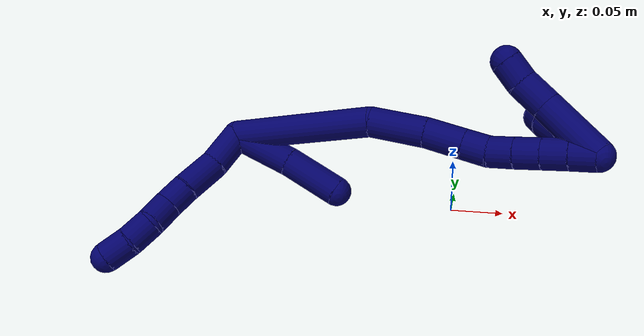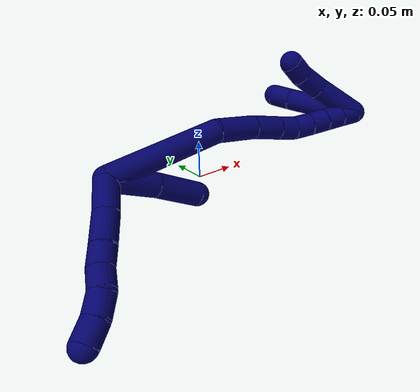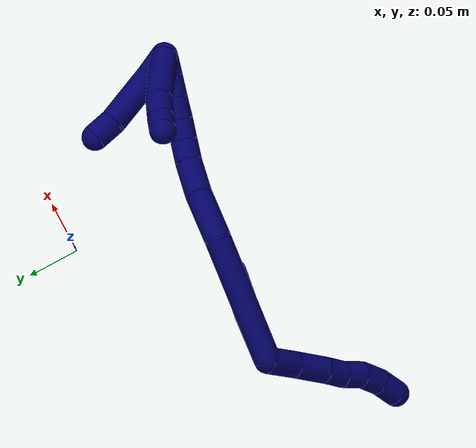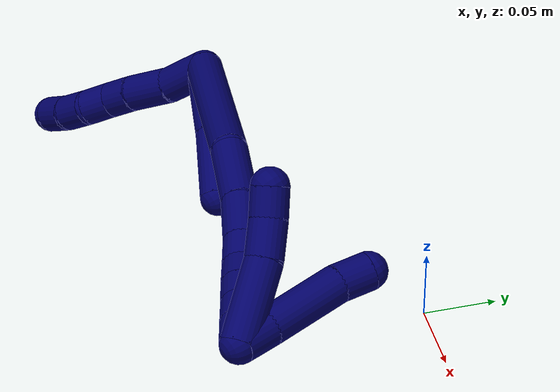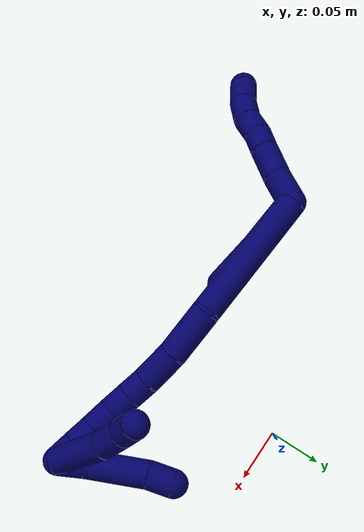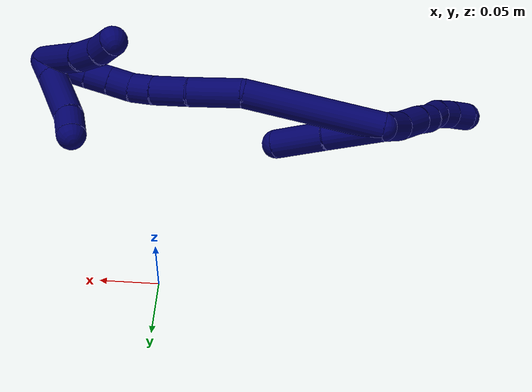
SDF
<sdf version="1.7">
 <world name="default">
  <model name="7">
   <static>0</static>
   <link name="7">
    <collision name="collision-cylinder-e_1_2_8">
     <pose>-0.008749 -0.010619 0.009324 0.850257 -0.554391 -0.256216</pose>
     <geometry><cylinder><radius>0.0125</radius><length>0.033241</length></cylinder></geometry>
     <surface>
      <friction><ode><mu>1.16</mu><mu2>1.16</mu2><slip1>0</slip1><slip2>0</slip2></ode></friction>
      <contact><ode><kp>1e+06</kp><kd>1</kd><max_vel>0</max_vel><min_depth>0.001</min_depth></ode></contact>
     </surface>
    </collision>
    <visual name="visual-cylinder-e_1_2_8">
     <pose>-0.008749 -0.010619 0.009324 0.850257 -0.554391 -0.256216</pose>
     <geometry><cylinder><radius>0.0125</radius><length>0.033241</length></cylinder></geometry>
     <material><ambient>0.003922 0 0.403922 1</ambient></material>
    </visual>
    <collision name="collision-cylinder-e_2_8_9">
     <pose>-0.02809 -0.02925 0.027751 0.721712 -0.717893 -0.281317</pose>
     <geometry><cylinder><radius>0.0125</radius><length>0.032203</length></cylinder></geometry>
     <surface>
      <friction><ode><mu>1.16</mu><mu2>1.16</mu2><slip1>0</slip1><slip2>0</slip2></ode></friction>
      <contact><ode><kp>1e+06</kp><kd>1</kd><max_vel>0</max_vel><min_depth>0.001</min_depth></ode></contact>
     </surface>
    </collision>
    <visual name="visual-cylinder-e_2_8_9">
     <pose>-0.02809 -0.02925 0.027751 0.721712 -0.717893 -0.281317</pose>
     <geometry><cylinder><radius>0.0125</radius><length>0.032203</length></cylinder></geometry>
     <material><ambient>0.003922 0 0.403922 1</ambient></material>
    </visual>
    <collision name="collision-cylinder-e_3_9_10">
     <pose>-0.045118 -0.043149 0.042159 0.837418 -0.682127 -0.313321</pose>
     <geometry><cylinder><radius>0.0125</radius><length>0.020416</length></cylinder></geometry>
     <surface>
      <friction><ode><mu>1.16</mu><mu2>1.16</mu2><slip1>0</slip1><slip2>0</slip2></ode></friction>
      <contact><ode><kp>1e+06</kp><kd>1</kd><max_vel>0</max_vel><min_depth>0.001</min_depth></ode></contact>
     </surface>
    </collision>
    <visual name="visual-cylinder-e_3_9_10">
     <pose>-0.045118 -0.043149 0.042159 0.837418 -0.682127 -0.313321</pose>
     <geometry><cylinder><radius>0.0125</radius><length>0.020416</length></cylinder></geometry>
     <material><ambient>0.003922 0 0.403922 1</ambient></material>
    </visual>
    <collision name="collision-cylinder-e_4_10_11">
     <pose>-0.057305 -0.053921 0.054323 0.618803 -0.599181 -0.196845</pose>
     <geometry><cylinder><radius>0.0125</radius><length>0.020398</length></cylinder></geometry>
     <surface>
      <friction><ode><mu>1.16</mu><mu2>1.16</mu2><slip1>0</slip1><slip2>0</slip2></ode></friction>
      <contact><ode><kp>1e+06</kp><kd>1</kd><max_vel>0</max_vel><min_depth>0.001</min_depth></ode></contact>
     </surface>
    </collision>
    <visual name="visual-cylinder-e_4_10_11">
     <pose>-0.057305 -0.053921 0.054323 0.618803 -0.599181 -0.196845</pose>
     <geometry><cylinder><radius>0.0125</radius><length>0.020398</length></cylinder></geometry>
     <material><ambient>0.003922 0 0.403922 1</ambient></material>
    </visual>
    <collision name="collision-cylinder-e_5_11_12">
     <pose>-0.070255 -0.065595 0.065642 0.989708 -0.725204 -0.403872</pose>
     <geometry><cylinder><radius>0.0125</radius><length>0.021706</length></cylinder></geometry>
     <surface>
      <friction><ode><mu>1.16</mu><mu2>1.16</mu2><slip1>0</slip1><slip2>0</slip2></ode></friction>
      <contact><ode><kp>1e+06</kp><kd>1</kd><max_vel>0</max_vel><min_depth>0.001</min_depth></ode></contact>
     </surface>
    </collision>
    <visual name="visual-cylinder-e_5_11_12">
     <pose>-0.070255 -0.065595 0.065642 0.989708 -0.725204 -0.403872</pose>
     <geometry><cylinder><radius>0.0125</radius><length>0.021706</length></cylinder></geometry>
     <material><ambient>0.003922 0 0.403922 1</ambient></material>
    </visual>
    <collision name="collision-cylinder-e_6_12_6">
     <pose>-0.085671 -0.079252 0.072693 1.20987 -0.841641 -0.600197</pose>
     <geometry><cylinder><radius>0.0125</radius><length>0.022037</length></cylinder></geometry>
     <surface>
      <friction><ode><mu>1.16</mu><mu2>1.16</mu2><slip1>0</slip1><slip2>0</slip2></ode></friction>
      <contact><ode><kp>1e+06</kp><kd>1</kd><max_vel>0</max_vel><min_depth>0.001</min_depth></ode></contact>
     </surface>
    </collision>
    <visual name="visual-cylinder-e_6_12_6">
     <pose>-0.085671 -0.079252 0.072693 1.20987 -0.841641 -0.600197</pose>
     <geometry><cylinder><radius>0.0125</radius><length>0.022037</length></cylinder></geometry>
     <material><ambient>0.003922 0 0.403922 1</ambient></material>
    </visual>
    <collision name="collision-cylinder-e_1_2_13">
     <pose>0.022539 -0.004314 0.011947 0.346499 1.0576 0.203804</pose>
     <geometry><cylinder><radius>0.0125</radius><length>0.051744</length></cylinder></geometry>
     <surface>
      <friction><ode><mu>1.16</mu><mu2>1.16</mu2><slip1>0</slip1><slip2>0</slip2></ode></friction>
      <contact><ode><kp>1e+06</kp><kd>1</kd><max_vel>0</max_vel><min_depth>0.001</min_depth></ode></contact>
     </surface>
    </collision>
    <visual name="visual-cylinder-e_1_2_13">
     <pose>0.022539 -0.004314 0.011947 0.346499 1.0576 0.203804</pose>
     <geometry><cylinder><radius>0.0125</radius><length>0.051744</length></cylinder></geometry>
     <material><ambient>0.003922 0 0.403922 1</ambient></material>
    </visual>
    <collision name="collision-cylinder-e_2_13_5">
     <pose>0.065078 -0.014095 0.036234 0.417069 0.977172 0.224032</pose>
     <geometry><cylinder><radius>0.0125</radius><length>0.048256</length></cylinder></geometry>
     <surface>
      <friction><ode><mu>1.16</mu><mu2>1.16</mu2><slip1>0</slip1><slip2>0</slip2></ode></friction>
      <contact><ode><kp>1e+06</kp><kd>1</kd><max_vel>0</max_vel><min_depth>0.001</min_depth></ode></contact>
     </surface>
    </collision>
    <visual name="visual-cylinder-e_2_13_5">
     <pose>0.065078 -0.014095 0.036234 0.417069 0.977172 0.224032</pose>
     <geometry><cylinder><radius>0.0125</radius><length>0.048256</length></cylinder></geometry>
     <material><ambient>0.003922 0 0.403922 1</ambient></material>
    </visual>
    <collision name="collision-cylinder-e_1_2_14">
     <pose>0.050531 0.022896 0.023359 -0.775377 0.996319 -0.437125</pose>
     <geometry><cylinder><radius>0.0125</radius><length>0.120388</length></cylinder></geometry>
     <surface>
      <friction><ode><mu>1.16</mu><mu2>1.16</mu2><slip1>0</slip1><slip2>0</slip2></ode></friction>
      <contact><ode><kp>1e+06</kp><kd>1</kd><max_vel>0</max_vel><min_depth>0.001</min_depth></ode></contact>
     </surface>
    </collision>
    <visual name="visual-cylinder-e_1_2_14">
     <pose>0.050531 0.022896 0.023359 -0.775377 0.996319 -0.437125</pose>
     <geometry><cylinder><radius>0.0125</radius><length>0.120388</length></cylinder></geometry>
     <material><ambient>0.003922 0 0.403922 1</ambient></material>
    </visual>
    <collision name="collision-cylinder-e_2_14_15">
     <pose>0.121754 0.048039 0.056803 -0.219223 1.10772 -0.135909</pose>
     <geometry><cylinder><radius>0.0125</radius><length>0.046254</length></cylinder></geometry>
     <surface>
      <friction><ode><mu>1.16</mu><mu2>1.16</mu2><slip1>0</slip1><slip2>0</slip2></ode></friction>
      <contact><ode><kp>1e+06</kp><kd>1</kd><max_vel>0</max_vel><min_depth>0.001</min_depth></ode></contact>
     </surface>
    </collision>
    <visual name="visual-cylinder-e_2_14_15">
     <pose>0.121754 0.048039 0.056803 -0.219223 1.10772 -0.135909</pose>
     <geometry><cylinder><radius>0.0125</radius><length>0.046254</length></cylinder></geometry>
     <material><ambient>0.003922 0 0.403922 1</ambient></material>
    </visual>
    <collision name="collision-cylinder-e_3_15_16">
     <pose>0.156006 0.050733 0.075423 -0.052407 1.00836 -0.02892</pose>
     <geometry><cylinder><radius>0.0125</radius><length>0.032059</length></cylinder></geometry>
     <surface>
      <friction><ode><mu>1.16</mu><mu2>1.16</mu2><slip1>0</slip1><slip2>0</slip2></ode></friction>
      <contact><ode><kp>1e+06</kp><kd>1</kd><max_vel>0</max_vel><min_depth>0.001</min_depth></ode></contact>
     </surface>
    </collision>
    <visual name="visual-cylinder-e_3_15_16">
     <pose>0.156006 0.050733 0.075423 -0.052407 1.00836 -0.02892</pose>
     <geometry><cylinder><radius>0.0125</radius><length>0.032059</length></cylinder></geometry>
     <material><ambient>0.003922 0 0.403922 1</ambient></material>
    </visual>
    <collision name="collision-cylinder-e_4_16_17">
     <pose>0.17774 0.051788 0.090019 -0.099773 0.930392 -0.050111</pose>
     <geometry><cylinder><radius>0.0125</radius><length>0.020387</length></cylinder></geometry>
     <surface>
      <friction><ode><mu>1.16</mu><mu2>1.16</mu2><slip1>0</slip1><slip2>0</slip2></ode></friction>
      <contact><ode><kp>1e+06</kp><kd>1</kd><max_vel>0</max_vel><min_depth>0.001</min_depth></ode></contact>
     </surface>
    </collision>
    <visual name="visual-cylinder-e_4_16_17">
     <pose>0.17774 0.051788 0.090019 -0.099773 0.930392 -0.050111</pose>
     <geometry><cylinder><radius>0.0125</radius><length>0.020387</length></cylinder></geometry>
     <material><ambient>0.003922 0 0.403922 1</ambient></material>
    </visual>
    <collision name="collision-cylinder-e_5_17_18">
     <pose>0.193709 0.055464 0.101767 -0.494999 0.878538 -0.236356</pose>
     <geometry><cylinder><radius>0.0125</radius><length>0.020252</length></cylinder></geometry>
     <surface>
      <friction><ode><mu>1.16</mu><mu2>1.16</mu2><slip1>0</slip1><slip2>0</slip2></ode></friction>
      <contact><ode><kp>1e+06</kp><kd>1</kd><max_vel>0</max_vel><min_depth>0.001</min_depth></ode></contact>
     </surface>
    </collision>
    <visual name="visual-cylinder-e_5_17_18">
     <pose>0.193709 0.055464 0.101767 -0.494999 0.878538 -0.236356</pose>
     <geometry><cylinder><radius>0.0125</radius><length>0.020252</length></cylinder></geometry>
     <material><ambient>0.003922 0 0.403922 1</ambient></material>
    </visual>
    <collision name="collision-cylinder-e_6_18_19">
     <pose>0.209474 0.06179 0.112899 -0.538894 0.898539 -0.264749</pose>
     <geometry><cylinder><radius>0.0125</radius><length>0.020373</length></cylinder></geometry>
     <surface>
      <friction><ode><mu>1.16</mu><mu2>1.16</mu2><slip1>0</slip1><slip2>0</slip2></ode></friction>
      <contact><ode><kp>1e+06</kp><kd>1</kd><max_vel>0</max_vel><min_depth>0.001</min_depth></ode></contact>
     </surface>
    </collision>
    <visual name="visual-cylinder-e_6_18_19">
     <pose>0.209474 0.06179 0.112899 -0.538894 0.898539 -0.264749</pose>
     <geometry><cylinder><radius>0.0125</radius><length>0.020373</length></cylinder></geometry>
     <material><ambient>0.003922 0 0.403922 1</ambient></material>
    </visual>
    <collision name="collision-cylinder-e_7_19_20">
     <pose>0.225246 0.068329 0.123889 -0.534655 0.880423 -0.256602</pose>
     <geometry><cylinder><radius>0.0125</radius><length>0.020238</length></cylinder></geometry>
     <surface>
      <friction><ode><mu>1.16</mu><mu2>1.16</mu2><slip1>0</slip1><slip2>0</slip2></ode></friction>
      <contact><ode><kp>1e+06</kp><kd>1</kd><max_vel>0</max_vel><min_depth>0.001</min_depth></ode></contact>
     </surface>
    </collision>
    <visual name="visual-cylinder-e_7_19_20">
     <pose>0.225246 0.068329 0.123889 -0.534655 0.880423 -0.256602</pose>
     <geometry><cylinder><radius>0.0125</radius><length>0.020238</length></cylinder></geometry>
     <material><ambient>0.003922 0 0.403922 1</ambient></material>
    </visual>
    <collision name="collision-cylinder-e_8_20_1">
     <pose>0.240879 0.074671 0.134893 -0.510619 0.896645 -0.249774</pose>
     <geometry><cylinder><radius>0.0125</radius><length>0.020048</length></cylinder></geometry>
     <surface>
      <friction><ode><mu>1.16</mu><mu2>1.16</mu2><slip1>0</slip1><slip2>0</slip2></ode></friction>
      <contact><ode><kp>1e+06</kp><kd>1</kd><max_vel>0</max_vel><min_depth>0.001</min_depth></ode></contact>
     </surface>
    </collision>
    <visual name="visual-cylinder-e_8_20_1">
     <pose>0.240879 0.074671 0.134893 -0.510619 0.896645 -0.249774</pose>
     <geometry><cylinder><radius>0.0125</radius><length>0.020048</length></cylinder></geometry>
     <material><ambient>0.003922 0 0.403922 1</ambient></material>
    </visual>
    <collision name="collision-cylinder-e_1_1_21">
     <pose>0.233721 0.08722 0.120189 -2.70162 -0.592122 1.87644</pose>
     <geometry><cylinder><radius>0.0125</radius><length>0.053714</length></cylinder></geometry>
     <surface>
      <friction><ode><mu>1.16</mu><mu2>1.16</mu2><slip1>0</slip1><slip2>0</slip2></ode></friction>
      <contact><ode><kp>1e+06</kp><kd>1</kd><max_vel>0</max_vel><min_depth>0.001</min_depth></ode></contact>
     </surface>
    </collision>
    <visual name="visual-cylinder-e_1_1_21">
     <pose>0.233721 0.08722 0.120189 -2.70162 -0.592122 1.87644</pose>
     <geometry><cylinder><radius>0.0125</radius><length>0.053714</length></cylinder></geometry>
     <material><ambient>0.003922 0 0.403922 1</ambient></material>
    </visual>
    <collision name="collision-cylinder-e_2_21_22">
     <pose>0.210101 0.101984 0.091891 -2.56666 -0.727413 1.8208</pose>
     <geometry><cylinder><radius>0.0125</radius><length>0.02596</length></cylinder></geometry>
     <surface>
      <friction><ode><mu>1.16</mu><mu2>1.16</mu2><slip1>0</slip1><slip2>0</slip2></ode></friction>
      <contact><ode><kp>1e+06</kp><kd>1</kd><max_vel>0</max_vel><min_depth>0.001</min_depth></ode></contact>
     </surface>
    </collision>
    <visual name="visual-cylinder-e_2_21_22">
     <pose>0.210101 0.101984 0.091891 -2.56666 -0.727413 1.8208</pose>
     <geometry><cylinder><radius>0.0125</radius><length>0.02596</length></cylinder></geometry>
     <material><ambient>0.003922 0 0.403922 1</ambient></material>
    </visual>
    <collision name="collision-cylinder-e_3_22_4">
     <pose>0.195198 0.113176 0.078379 -2.30802 -0.665032 1.3249</pose>
     <geometry><cylinder><radius>0.0125</radius><length>0.020326</length></cylinder></geometry>
     <surface>
      <friction><ode><mu>1.16</mu><mu2>1.16</mu2><slip1>0</slip1><slip2>0</slip2></ode></friction>
      <contact><ode><kp>1e+06</kp><kd>1</kd><max_vel>0</max_vel><min_depth>0.001</min_depth></ode></contact>
     </surface>
    </collision>
    <visual name="visual-cylinder-e_3_22_4">
     <pose>0.195198 0.113176 0.078379 -2.30802 -0.665032 1.3249</pose>
     <geometry><cylinder><radius>0.0125</radius><length>0.020326</length></cylinder></geometry>
     <material><ambient>0.003922 0 0.403922 1</ambient></material>
    </visual>
    <collision name="collision-cylinder-e_1_1_23">
     <pose>0.247662 0.075727 0.128876 2.96887 -0.089791 -0.957321</pose>
     <geometry><cylinder><radius>0.0125</radius><length>0.023394</length></cylinder></geometry>
     <surface>
      <friction><ode><mu>1.16</mu><mu2>1.16</mu2><slip1>0</slip1><slip2>0</slip2></ode></friction>
      <contact><ode><kp>1e+06</kp><kd>1</kd><max_vel>0</max_vel><min_depth>0.001</min_depth></ode></contact>
     </surface>
    </collision>
    <visual name="visual-cylinder-e_1_1_23">
     <pose>0.247662 0.075727 0.128876 2.96887 -0.089791 -0.957321</pose>
     <geometry><cylinder><radius>0.0125</radius><length>0.023394</length></cylinder></geometry>
     <material><ambient>0.003922 0 0.403922 1</ambient></material>
    </visual>
    <collision name="collision-cylinder-e_2_23_24">
     <pose>0.244902 0.071621 0.090369 3.06394 -0.063028 -1.36341</pose>
     <geometry><cylinder><radius>0.0125</radius><length>0.054332</length></cylinder></geometry>
     <surface>
      <friction><ode><mu>1.16</mu><mu2>1.16</mu2><slip1>0</slip1><slip2>0</slip2></ode></friction>
      <contact><ode><kp>1e+06</kp><kd>1</kd><max_vel>0</max_vel><min_depth>0.001</min_depth></ode></contact>
     </surface>
    </collision>
    <visual name="visual-cylinder-e_2_23_24">
     <pose>0.244902 0.071621 0.090369 3.06394 -0.063028 -1.36341</pose>
     <geometry><cylinder><radius>0.0125</radius><length>0.054332</length></cylinder></geometry>
     <material><ambient>0.003922 0 0.403922 1</ambient></material>
    </visual>
    <collision name="collision-cylinder-e_3_24_3">
     <pose>0.244521 0.068537 0.052325 3.05274 0.119781 1.8657</pose>
     <geometry><cylinder><radius>0.0125</radius><length>0.022274</length></cylinder></geometry>
     <surface>
      <friction><ode><mu>1.16</mu><mu2>1.16</mu2><slip1>0</slip1><slip2>0</slip2></ode></friction>
      <contact><ode><kp>1e+06</kp><kd>1</kd><max_vel>0</max_vel><min_depth>0.001</min_depth></ode></contact>
     </surface>
    </collision>
    <visual name="visual-cylinder-e_3_24_3">
     <pose>0.244521 0.068537 0.052325 3.05274 0.119781 1.8657</pose>
     <geometry><cylinder><radius>0.0125</radius><length>0.022274</length></cylinder></geometry>
     <material><ambient>0.003922 0 0.403922 1</ambient></material>
    </visual>
    <collision name="collision-sphere-3">
     <pose>0.245852 0.067556 0.041311 0 -0 0</pose>
     <geometry><sphere><radius>0.0125</radius></sphere></geometry>
     <surface>
      <friction><ode><mu>1.16</mu><mu2>1.16</mu2><slip1>0</slip1><slip2>0</slip2></ode></friction>
      <contact><ode><kp>1e+06</kp><kd>1</kd><max_vel>0</max_vel><min_depth>0.001</min_depth></ode></contact>
     </surface>
    </collision>
    <visual name="visual-sphere-3">
     <pose>0.245852 0.067556 0.041311 0 -0 0</pose>
     <geometry><sphere><radius>0.0125</radius></sphere></geometry>
     <material><ambient>0.003922 0 0.403922 1</ambient></material>
    </visual>
    <collision name="collision-sphere-24">
     <pose>0.243191 0.069518 0.063338 0 -0 0</pose>
     <geometry><sphere><radius>0.0125</radius></sphere></geometry>
     <surface>
      <friction><ode><mu>1.16</mu><mu2>1.16</mu2><slip1>0</slip1><slip2>0</slip2></ode></friction>
      <contact><ode><kp>1e+06</kp><kd>1</kd><max_vel>0</max_vel><min_depth>0.001</min_depth></ode></contact>
     </surface>
    </collision>
    <visual name="visual-sphere-24">
     <pose>0.243191 0.069518 0.063338 0 -0 0</pose>
     <geometry><sphere><radius>0.0125</radius></sphere></geometry>
     <material><ambient>0.003922 0 0.403922 1</ambient></material>
    </visual>
    <collision name="collision-sphere-23">
     <pose>0.246613 0.073725 0.117399 0 -0 0</pose>
     <geometry><sphere><radius>0.0125</radius></sphere></geometry>
     <surface>
      <friction><ode><mu>1.16</mu><mu2>1.16</mu2><slip1>0</slip1><slip2>0</slip2></ode></friction>
      <contact><ode><kp>1e+06</kp><kd>1</kd><max_vel>0</max_vel><min_depth>0.001</min_depth></ode></contact>
     </surface>
    </collision>
    <visual name="visual-sphere-23">
     <pose>0.246613 0.073725 0.117399 0 -0 0</pose>
     <geometry><sphere><radius>0.0125</radius></sphere></geometry>
     <material><ambient>0.003922 0 0.403922 1</ambient></material>
    </visual>
    <collision name="collision-sphere-4">
     <pose>0.188927 0.119097 0.073003 0 -0 0</pose>
     <geometry><sphere><radius>0.0125</radius></sphere></geometry>
     <surface>
      <friction><ode><mu>1.16</mu><mu2>1.16</mu2><slip1>0</slip1><slip2>0</slip2></ode></friction>
      <contact><ode><kp>1e+06</kp><kd>1</kd><max_vel>0</max_vel><min_depth>0.001</min_depth></ode></contact>
     </surface>
    </collision>
    <visual name="visual-sphere-4">
     <pose>0.188927 0.119097 0.073003 0 -0 0</pose>
     <geometry><sphere><radius>0.0125</radius></sphere></geometry>
     <material><ambient>0.003922 0 0.403922 1</ambient></material>
    </visual>
    <collision name="collision-sphere-22">
     <pose>0.20147 0.107255 0.083755 0 -0 0</pose>
     <geometry><sphere><radius>0.0125</radius></sphere></geometry>
     <surface>
      <friction><ode><mu>1.16</mu><mu2>1.16</mu2><slip1>0</slip1><slip2>0</slip2></ode></friction>
      <contact><ode><kp>1e+06</kp><kd>1</kd><max_vel>0</max_vel><min_depth>0.001</min_depth></ode></contact>
     </surface>
    </collision>
    <visual name="visual-sphere-22">
     <pose>0.20147 0.107255 0.083755 0 -0 0</pose>
     <geometry><sphere><radius>0.0125</radius></sphere></geometry>
     <material><ambient>0.003922 0 0.403922 1</ambient></material>
    </visual>
    <collision name="collision-sphere-21">
     <pose>0.218731 0.096712 0.100027 0 -0 0</pose>
     <geometry><sphere><radius>0.0125</radius></sphere></geometry>
     <surface>
      <friction><ode><mu>1.16</mu><mu2>1.16</mu2><slip1>0</slip1><slip2>0</slip2></ode></friction>
      <contact><ode><kp>1e+06</kp><kd>1</kd><max_vel>0</max_vel><min_depth>0.001</min_depth></ode></contact>
     </surface>
    </collision>
    <visual name="visual-sphere-21">
     <pose>0.218731 0.096712 0.100027 0 -0 0</pose>
     <geometry><sphere><radius>0.0125</radius></sphere></geometry>
     <material><ambient>0.003922 0 0.403922 1</ambient></material>
    </visual>
    <collision name="collision-sphere-1">
     <pose>0.24871 0.077729 0.140352 0 -0 0</pose>
     <geometry><sphere><radius>0.0125</radius></sphere></geometry>
     <surface>
      <friction><ode><mu>1.16</mu><mu2>1.16</mu2><slip1>0</slip1><slip2>0</slip2></ode></friction>
      <contact><ode><kp>1e+06</kp><kd>1</kd><max_vel>0</max_vel><min_depth>0.001</min_depth></ode></contact>
     </surface>
    </collision>
    <visual name="visual-sphere-1">
     <pose>0.24871 0.077729 0.140352 0 -0 0</pose>
     <geometry><sphere><radius>0.0125</radius></sphere></geometry>
     <material><ambient>0.003922 0 0.403922 1</ambient></material>
    </visual>
    <collision name="collision-sphere-12">
     <pose>-0.077454 -0.072384 0.070101 0 -0 0</pose>
     <geometry><sphere><radius>0.0125</radius></sphere></geometry>
     <surface>
      <friction><ode><mu>1.16</mu><mu2>1.16</mu2><slip1>0</slip1><slip2>0</slip2></ode></friction>
      <contact><ode><kp>1e+06</kp><kd>1</kd><max_vel>0</max_vel><min_depth>0.001</min_depth></ode></contact>
     </surface>
    </collision>
    <visual name="visual-sphere-12">
     <pose>-0.077454 -0.072384 0.070101 0 -0 0</pose>
     <geometry><sphere><radius>0.0125</radius></sphere></geometry>
     <material><ambient>0.003922 0 0.403922 1</ambient></material>
    </visual>
    <collision name="collision-sphere-11">
     <pose>-0.063057 -0.058806 0.061184 0 -0 0</pose>
     <geometry><sphere><radius>0.0125</radius></sphere></geometry>
     <surface>
      <friction><ode><mu>1.16</mu><mu2>1.16</mu2><slip1>0</slip1><slip2>0</slip2></ode></friction>
      <contact><ode><kp>1e+06</kp><kd>1</kd><max_vel>0</max_vel><min_depth>0.001</min_depth></ode></contact>
     </surface>
    </collision>
    <visual name="visual-sphere-11">
     <pose>-0.063057 -0.058806 0.061184 0 -0 0</pose>
     <geometry><sphere><radius>0.0125</radius></sphere></geometry>
     <material><ambient>0.003922 0 0.403922 1</ambient></material>
    </visual>
    <collision name="collision-sphere-10">
     <pose>-0.051553 -0.049036 0.047463 0 -0 0</pose>
     <geometry><sphere><radius>0.0125</radius></sphere></geometry>
     <surface>
      <friction><ode><mu>1.16</mu><mu2>1.16</mu2><slip1>0</slip1><slip2>0</slip2></ode></friction>
      <contact><ode><kp>1e+06</kp><kd>1</kd><max_vel>0</max_vel><min_depth>0.001</min_depth></ode></contact>
     </surface>
    </collision>
    <visual name="visual-sphere-10">
     <pose>-0.051553 -0.049036 0.047463 0 -0 0</pose>
     <geometry><sphere><radius>0.0125</radius></sphere></geometry>
     <material><ambient>0.003922 0 0.403922 1</ambient></material>
    </visual>
    <collision name="collision-sphere-9">
     <pose>-0.038682 -0.037262 0.036855 0 -0 0</pose>
     <geometry><sphere><radius>0.0125</radius></sphere></geometry>
     <surface>
      <friction><ode><mu>1.16</mu><mu2>1.16</mu2><slip1>0</slip1><slip2>0</slip2></ode></friction>
      <contact><ode><kp>1e+06</kp><kd>1</kd><max_vel>0</max_vel><min_depth>0.001</min_depth></ode></contact>
     </surface>
    </collision>
    <visual name="visual-sphere-9">
     <pose>-0.038682 -0.037262 0.036855 0 -0 0</pose>
     <geometry><sphere><radius>0.0125</radius></sphere></geometry>
     <material><ambient>0.003922 0 0.403922 1</ambient></material>
    </visual>
    <collision name="collision-sphere-2">
     <geometry><sphere><radius>0.0125</radius></sphere></geometry>
     <surface>
      <friction><ode><mu>1.16</mu><mu2>1.16</mu2><slip1>0</slip1><slip2>0</slip2></ode></friction>
      <contact><ode><kp>1e+06</kp><kd>1</kd><max_vel>0</max_vel><min_depth>0.001</min_depth></ode></contact>
     </surface>
    </collision>
    <visual name="visual-sphere-2">
     <geometry><sphere><radius>0.0125</radius></sphere></geometry>
     <material><ambient>0.003922 0 0.403922 1</ambient></material>
    </visual>
    <collision name="collision-sphere-19">
     <pose>0.217445 0.065046 0.118344 0 -0 0</pose>
     <geometry><sphere><radius>0.0125</radius></sphere></geometry>
     <surface>
      <friction><ode><mu>1.16</mu><mu2>1.16</mu2><slip1>0</slip1><slip2>0</slip2></ode></friction>
      <contact><ode><kp>1e+06</kp><kd>1</kd><max_vel>0</max_vel><min_depth>0.001</min_depth></ode></contact>
     </surface>
    </collision>
    <visual name="visual-sphere-19">
     <pose>0.217445 0.065046 0.118344 0 -0 0</pose>
     <geometry><sphere><radius>0.0125</radius></sphere></geometry>
     <material><ambient>0.003922 0 0.403922 1</ambient></material>
    </visual>
    <collision name="collision-sphere-8">
     <pose>-0.017499 -0.021238 0.018647 0 -0 0</pose>
     <geometry><sphere><radius>0.0125</radius></sphere></geometry>
     <surface>
      <friction><ode><mu>1.16</mu><mu2>1.16</mu2><slip1>0</slip1><slip2>0</slip2></ode></friction>
      <contact><ode><kp>1e+06</kp><kd>1</kd><max_vel>0</max_vel><min_depth>0.001</min_depth></ode></contact>
     </surface>
    </collision>
    <visual name="visual-sphere-8">
     <pose>-0.017499 -0.021238 0.018647 0 -0 0</pose>
     <geometry><sphere><radius>0.0125</radius></sphere></geometry>
     <material><ambient>0.003922 0 0.403922 1</ambient></material>
    </visual>
    <collision name="collision-sphere-6">
     <pose>-0.093888 -0.08612 0.075285 0 -0 0</pose>
     <geometry><sphere><radius>0.0125</radius></sphere></geometry>
     <surface>
      <friction><ode><mu>1.16</mu><mu2>1.16</mu2><slip1>0</slip1><slip2>0</slip2></ode></friction>
      <contact><ode><kp>1e+06</kp><kd>1</kd><max_vel>0</max_vel><min_depth>0.001</min_depth></ode></contact>
     </surface>
    </collision>
    <visual name="visual-sphere-6">
     <pose>-0.093888 -0.08612 0.075285 0 -0 0</pose>
     <geometry><sphere><radius>0.0125</radius></sphere></geometry>
     <material><ambient>0.003922 0 0.403922 1</ambient></material>
    </visual>
    <collision name="collision-sphere-13">
     <pose>0.045078 -0.008627 0.023894 0 -0 0</pose>
     <geometry><sphere><radius>0.0125</radius></sphere></geometry>
     <surface>
      <friction><ode><mu>1.16</mu><mu2>1.16</mu2><slip1>0</slip1><slip2>0</slip2></ode></friction>
      <contact><ode><kp>1e+06</kp><kd>1</kd><max_vel>0</max_vel><min_depth>0.001</min_depth></ode></contact>
     </surface>
    </collision>
    <visual name="visual-sphere-13">
     <pose>0.045078 -0.008627 0.023894 0 -0 0</pose>
     <geometry><sphere><radius>0.0125</radius></sphere></geometry>
     <material><ambient>0.003922 0 0.403922 1</ambient></material>
    </visual>
    <collision name="collision-sphere-5">
     <pose>0.085079 -0.019562 0.048574 0 -0 0</pose>
     <geometry><sphere><radius>0.0125</radius></sphere></geometry>
     <surface>
      <friction><ode><mu>1.16</mu><mu2>1.16</mu2><slip1>0</slip1><slip2>0</slip2></ode></friction>
      <contact><ode><kp>1e+06</kp><kd>1</kd><max_vel>0</max_vel><min_depth>0.001</min_depth></ode></contact>
     </surface>
    </collision>
    <visual name="visual-sphere-5">
     <pose>0.085079 -0.019562 0.048574 0 -0 0</pose>
     <geometry><sphere><radius>0.0125</radius></sphere></geometry>
     <material><ambient>0.003922 0 0.403922 1</ambient></material>
    </visual>
    <collision name="collision-sphere-14">
     <pose>0.101063 0.045792 0.046719 0 -0 0</pose>
     <geometry><sphere><radius>0.0125</radius></sphere></geometry>
     <surface>
      <friction><ode><mu>1.16</mu><mu2>1.16</mu2><slip1>0</slip1><slip2>0</slip2></ode></friction>
      <contact><ode><kp>1e+06</kp><kd>1</kd><max_vel>0</max_vel><min_depth>0.001</min_depth></ode></contact>
     </surface>
    </collision>
    <visual name="visual-sphere-14">
     <pose>0.101063 0.045792 0.046719 0 -0 0</pose>
     <geometry><sphere><radius>0.0125</radius></sphere></geometry>
     <material><ambient>0.003922 0 0.403922 1</ambient></material>
    </visual>
    <collision name="collision-sphere-15">
     <pose>0.142446 0.050285 0.066887 0 -0 0</pose>
     <geometry><sphere><radius>0.0125</radius></sphere></geometry>
     <surface>
      <friction><ode><mu>1.16</mu><mu2>1.16</mu2><slip1>0</slip1><slip2>0</slip2></ode></friction>
      <contact><ode><kp>1e+06</kp><kd>1</kd><max_vel>0</max_vel><min_depth>0.001</min_depth></ode></contact>
     </surface>
    </collision>
    <visual name="visual-sphere-15">
     <pose>0.142446 0.050285 0.066887 0 -0 0</pose>
     <geometry><sphere><radius>0.0125</radius></sphere></geometry>
     <material><ambient>0.003922 0 0.403922 1</ambient></material>
    </visual>
    <collision name="collision-sphere-16">
     <pose>0.169566 0.051181 0.083959 0 -0 0</pose>
     <geometry><sphere><radius>0.0125</radius></sphere></geometry>
     <surface>
      <friction><ode><mu>1.16</mu><mu2>1.16</mu2><slip1>0</slip1><slip2>0</slip2></ode></friction>
      <contact><ode><kp>1e+06</kp><kd>1</kd><max_vel>0</max_vel><min_depth>0.001</min_depth></ode></contact>
     </surface>
    </collision>
    <visual name="visual-sphere-16">
     <pose>0.169566 0.051181 0.083959 0 -0 0</pose>
     <geometry><sphere><radius>0.0125</radius></sphere></geometry>
     <material><ambient>0.003922 0 0.403922 1</ambient></material>
    </visual>
    <collision name="collision-sphere-17">
     <pose>0.185914 0.052394 0.09608 0 -0 0</pose>
     <geometry><sphere><radius>0.0125</radius></sphere></geometry>
     <surface>
      <friction><ode><mu>1.16</mu><mu2>1.16</mu2><slip1>0</slip1><slip2>0</slip2></ode></friction>
      <contact><ode><kp>1e+06</kp><kd>1</kd><max_vel>0</max_vel><min_depth>0.001</min_depth></ode></contact>
     </surface>
    </collision>
    <visual name="visual-sphere-17">
     <pose>0.185914 0.052394 0.09608 0 -0 0</pose>
     <geometry><sphere><radius>0.0125</radius></sphere></geometry>
     <material><ambient>0.003922 0 0.403922 1</ambient></material>
    </visual>
    <collision name="collision-sphere-18">
     <pose>0.201504 0.058535 0.107455 0 -0 0</pose>
     <geometry><sphere><radius>0.0125</radius></sphere></geometry>
     <surface>
      <friction><ode><mu>1.16</mu><mu2>1.16</mu2><slip1>0</slip1><slip2>0</slip2></ode></friction>
      <contact><ode><kp>1e+06</kp><kd>1</kd><max_vel>0</max_vel><min_depth>0.001</min_depth></ode></contact>
     </surface>
    </collision>
    <visual name="visual-sphere-18">
     <pose>0.201504 0.058535 0.107455 0 -0 0</pose>
     <geometry><sphere><radius>0.0125</radius></sphere></geometry>
     <material><ambient>0.003922 0 0.403922 1</ambient></material>
    </visual>
    <collision name="collision-sphere-20">
     <pose>0.233048 0.071613 0.129433 0 -0 0</pose>
     <geometry><sphere><radius>0.0125</radius></sphere></geometry>
     <surface>
      <friction><ode><mu>1.16</mu><mu2>1.16</mu2><slip1>0</slip1><slip2>0</slip2></ode></friction>
      <contact><ode><kp>1e+06</kp><kd>1</kd><max_vel>0</max_vel><min_depth>0.001</min_depth></ode></contact>
     </surface>
    </collision>
    <visual name="visual-sphere-20">
     <pose>0.233048 0.071613 0.129433 0 -0 0</pose>
     <geometry><sphere><radius>0.0125</radius></sphere></geometry>
     <material><ambient>0.003922 0 0.403922 1</ambient></material>
    </visual>
    <inertial>
     <pose>0.109399 0.029861 0.063141 0 -0 0</pose>
     <mass>0.75</mass>
     <inertia>
      <ixx>8.5e-05</ixx>
      <ixy>0</ixy>
      <ixz>0</ixz>
      <iyy>0.00016</iyy>
      <iyz>0</iyz>
      <izz>-0.000189</izz>
     </inertia>
    </inertial>
   </link>
   <pose>-0.180751 -0.106558 0.093362 1.74145 0.166595 0.377229</pose>
  </model>
 </world>
</sdf>
